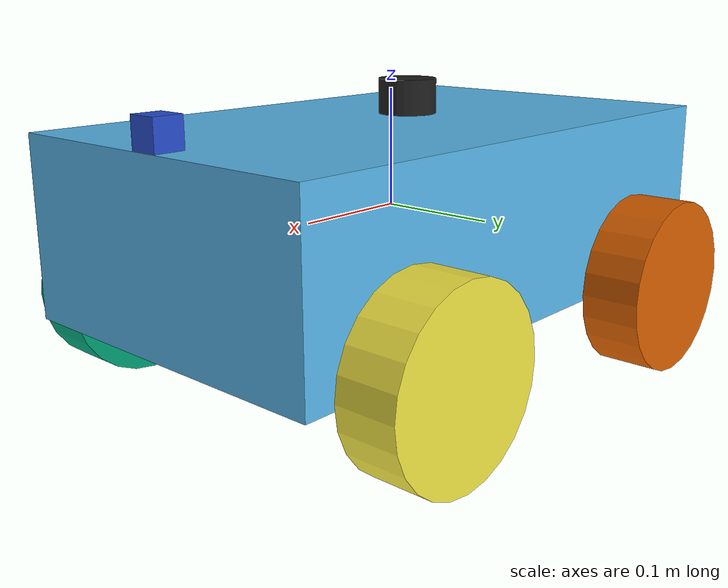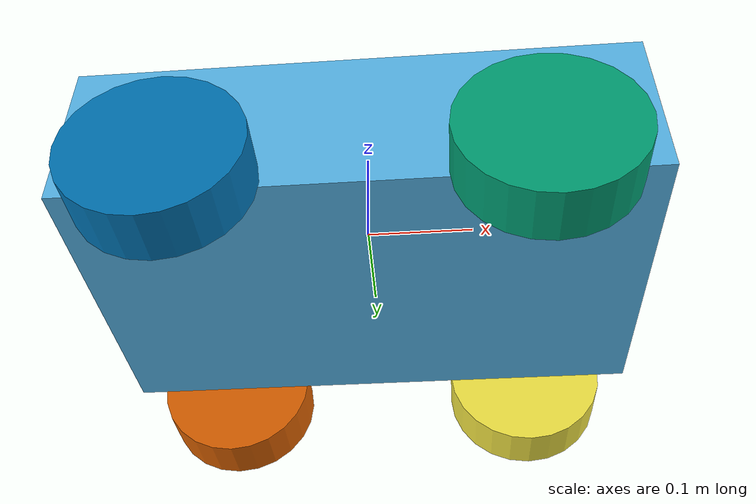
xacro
<?xml version="1.0"?>

<robot name="differential_drive_robot" xmlns:xacro="http://www.ros.org/wiki/xacro">

<!-- Body dimensions -->
<xacro:property name="body_link_x_dim" value="0.5"/>
<xacro:property name="body_link_y_dim" value="0.3"/>
<xacro:property name="body_link_z_dim" value="0.15"/>

<!-- Wheel dimensions -->
<xacro:property name="wheel_link_radius" value="0.075"/>
<xacro:property name="wheel_link_length" value="0.05"/>
<xacro:property name="wheel_link_z_location" value="-0.1"/>

<!-- Material density -->
<xacro:property name="body_density" value="2710.0"/>
<xacro:property name="wheel_density" value="2710.0"/>

<!-- Pi constant -->
<xacro:property name="pi_const" value="3.1415926"/>

<!-- Robot body and wheel mass -->
<xacro:property name="body_mass"
value="${body_density*body_link_x_dim*body_link_y_dim*body_link_z_dim}"/>

<xacro:property name="wheel_mass"
value="${wheel_density*pi_const*wheel_link_radius*wheel_link_radius*wheel_link_length}"/>

<!-- Moments of inertia of the wheel -->
<xacro:property name="Iz_wheel" value="${0.5*wheel_mass*wheel_link_radius*wheel_link_radius}"/>
<xacro:property name="I_wheel" value="${(1.0/12.0)*wheel_mass*(3.0*wheel_link_radius*wheel_link_radius+wheel_link_length*wheel_link_length)}"/>

<!-- This macro defines the complete inertial section of the wheel -->
<!-- It is used later in the code -->
<xacro:macro name="inertia_wheel">
    <inertial>
        <origin rpy="0 0 0" xyz="0 0 0"/>
        <mass value="${wheel_mass}"/>
        <inertia ixx="${I_wheel}" ixy="0.0" ixz="0.0" iyy="${I_wheel}" iyz="0" izz="${Iz_wheel}"/>
    </inertial>
</xacro:macro>

<!-- Over here we include the file that defines extra Gazebo options and motion control driver -->
<xacro:include filename="$(find four_wheel_bot)/urdf/gazebo_controller.xacro"/>

<!-- FROM HERE WE DEFINE LINKS, JOINTS -->

<!-- We need to have this dummy link otherwise Gazebo will complain -->
<link name="dummy">
</link>
<joint name="dummy_joint" type="fixed">
    <parent link="dummy"/>
    <child link="body_link"/>
</joint>

<!-- START: Body link of the robot -->

<link name="body_link">
    <visual>
        <geometry>
            <box size="${body_link_x_dim} ${body_link_y_dim} ${body_link_z_dim}"/>
        </geometry>
        <origin rpy="0 0 0" xyz="0 0 0"/>
    </visual>

    <collision>
        <geometry>
            <box size="${body_link_x_dim} ${body_link_y_dim} ${body_link_z_dim}"/>
        </geometry>
        <origin rpy="0 0 0" xyz="0 0 0"/>
    </collision>

    <inertial>
        <origin rpy="0 0 0" xyz="0 0 0"/>
        <mass value="${body_mass}"/>
        <inertia
        ixx="${(1/12)*body_mass*(body_link_y_dim*body_link_y_dim+body_link_z_dim*body_link_z_dim)}"
        ixy="0" ixz="0" iyy="${(1/12)*body_mass*(body_link_x_dim*body_link_x_dim+body_link_z_dim*body_link_z_dim)}"
        iyz="0"
        izz="${(1/12)*body_mass*(body_link_y_dim*body_link_y_dim+body_link_x_dim*body_link_x_dim)}"/>
    </inertial>
</link>

<!-- END: Body link of the robot -->

<!-- START: Back right wheel of the robot and the joint -->
<joint name="wheel1_joint" type="continuous">
    <parent link="body_link"/>
    <child link="wheel1_link"/>
    <origin xyz="0.15 -0.175 -0.07" rpy="0 0 0"/>
    <axis xyz="0 1 0"/>
    <limit effort="1000" velocity="1000"/>
    <dynamics damping="1.0" friction="1.0"/>
</joint>

<link name="wheel1_link">
    <visual>
        <origin rpy="1.570795 0 0" xyz="0 0 0"/>
        <geometry>
            <cylinder length="${wheel_link_length}" radius="${wheel_link_radius}"/>
        </geometry>
    </visual>

    <collision>
        <origin rpy="1.570795 0 0" xyz="0 0 0"/>
        <geometry>
            <cylinder length="${wheel_link_length}" radius="${wheel_link_radius}"/>
        </geometry>
    </collision>

    <xacro:inertia_wheel />
</link>

<!-- END: Back right wheel of the robot and the joint -->

<!-- START: Back left wheel of the robot and the joint -->
<joint name="wheel2_joint" type="continuous">
    <parent link="body_link"/>
    <child link="wheel2_link"/>
    <origin xyz="0.15 0.175 -0.07" rpy="0 0 0"/>
    <axis xyz="0 1 0"/>
    <limit effort="1000" velocity="1000"/>
    <dynamics damping="1.0" friction="1.0"/>
</joint>

<link name="wheel2_link">
    <visual>
        <origin rpy="1.570795 0 0" xyz="0 0 0"/>
        <geometry>
            <cylinder length="${wheel_link_length}" radius="${wheel_link_radius}"/>
        </geometry>
    </visual>

    <collision>
        <origin rpy="1.570795 0 0" xyz="0 0 0"/>
        <geometry>
            <cylinder length="${wheel_link_length}" radius="${wheel_link_radius}"/>
        </geometry>
    </collision>

    <xacro:inertia_wheel />
</link>

<!-- END: Back left wheel of the robot and the joint -->

<!-- START: Front right wheel of the robot and the joint -->
<joint name="wheel3_joint" type="continuous">
    <parent link="body_link"/>
    <child link="wheel3_link"/>
    <origin xyz="-0.15 -0.175 -0.07" rpy="0 0 0"/>
    <axis xyz="0 1 0"/>
    <limit effort="1000" velocity="1000"/>
    <dynamics damping="1.0" friction="1.0"/>
</joint>

<link name="wheel3_link">
    <visual>
        <origin rpy="1.570795 0 0" xyz="0 0 0"/>
        <geometry>
            <cylinder length="${wheel_link_length}" radius="${wheel_link_radius}"/>
        </geometry>
    </visual>

    <collision>
        <origin rpy="1.570795 0 0" xyz="0 0 0"/>
        <geometry>
            <cylinder length="${wheel_link_length}" radius="${wheel_link_radius}"/>
        </geometry>
    </collision>

    <xacro:inertia_wheel />
</link>

<!-- END: Front right wheel of the robot and the joint -->

<!-- START: Front left wheel of the robot and the joint -->

<joint name="wheel4_joint" type="continuous">
    <parent link="body_link"/>
    <child link="wheel4_link"/>
    <origin xyz="-0.15 0.175 -0.07" rpy="0 0 0"/>
    <axis xyz="0 1 0"/>
    <limit effort="1000" velocity="1000"/>
    <dynamics damping="1.0" friction="1.0"/>
</joint>

<link name="wheel4_link">
    <visual>
        <origin rpy="1.570795 0 0" xyz="0 0 0"/>
        <geometry>
            <cylinder length="${wheel_link_length}" radius="${wheel_link_radius}"/>
        </geometry>
    </visual>

    <collision>
        <origin rpy="1.570795 0 0" xyz="0 0 0"/>
        <geometry>
            <cylinder length="${wheel_link_length}" radius="${wheel_link_radius}"/>
        </geometry>
    </collision>

    <xacro:inertia_wheel />
</link>

<!-- END: Front left wheel of the robot and the joint -->

<!-- START: Sensors -->

<!-- Camera sensor link and joint -->
<link name="camera_link">
    <visual>
        <origin rpy="0 0 0" xyz="0 0 0"/>
        <geometry>
            <box size="0.025 0.025 0.025"/>
        </geometry>
        <material name="Gazebo/Blue"/>
    </visual>
    <collision>
        <origin rpy="0 0 0" xyz="0 0 0"/>
        <geometry>
            <box size="0.05 0.05 0.05"/>
        </geometry>
    </collision>
    <inertial>
        <origin rpy="0 0 0" xyz="0 0 0"/>
        <mass value="0.1"/>
        <inertia ixx="1e-5" ixy="0" ixz="0" iyy="1e-5" iyz="0" izz="1e-5"/>
    </inertial>
</link>

<joint name="camera_joint" type="fixed">
    <parent link="body_link"/>
    <child link="camera_link"/>
    <origin xyz="0.238 0 0.088" rpy="0 0 0"/>
</joint>

<!-- Optical frame for camera (REP-103 compliant) -->
<joint name="camera_optical_joint" type="fixed">
    <parent link="camera_link"/>
    <child link="camera_link_optical"/>
    <origin xyz="0 0 0" rpy="${-pi/2} 0 ${-pi/2}"/>

</joint>

<link name="camera_link_optical"></link>

<!-- Lidar sensor link and joint -->
<link name="lidar_link">
    <visual>
        <origin rpy="0 0 0" xyz="-0.023 0 0.032"/>
        <geometry>
            <cylinder length="0.03" radius="0.025"/>
        </geometry>
    </visual>
    <collision>
        <origin rpy="0 0 0" xyz="0.3 0 0.25"/>
        <geometry>
            <cylinder length="0.06" radius="0.05"/>
        </geometry>
    </collision>
    <inertial>
        <origin rpy="0 0 0" xyz="0 0 0"/>
        <mass value="0.1"/>
        <inertia ixx="1e-5" ixy="0" ixz="0" iyy="1e-5" iyz="0" izz="1e-5"/>
    </inertial>
</link>

<joint name="lidar_joint" type="fixed">
    <parent link="body_link"/>
    <child link="lidar_link"/>
    <origin xyz="0.0 0 0.06" rpy="0 0 0.088"/>
</joint>

<!-- Provide a REP-105 style alias frame expected by some tools -->
<link name="laser_frame"/>
<joint name="laser_frame_joint" type="fixed">
    <parent link="lidar_link"/>
    <child link="laser_frame"/>
    <origin xyz="0 0 0" rpy="0 0 0"/>

</joint>

<!-- Gazebo plugins for sensors -->
<gazebo reference="camera_link">
    <material>Gazebo/Black</material>
    <sensor name="camera" type="camera">
        <pose> 0 0 0 0 0 0 </pose>
        <visualize>true</visualize>
        <update_rate>10</update_rate>
        <camera>
            <horizontal_fov>1.089</horizontal_fov>
            <image>
                <format>R8G8B8</format>
                <width>640</width>
                <height>480</height>
            </image>
            <clip>
                <near>0.05</near>
                <far>8.0</far>
            </clip>
        </camera>
        <plugin name="camera_controller" filename="libgazebo_ros_camera.so">
            <frame_name>camera_link_optical</frame_name>
        </plugin>
    </sensor>
</gazebo>

<gazebo reference="lidar_link">
    <material>Gazebo/Black</material>
    <sensor name="laser" type="ray">
        <pose> 0.06 0 0 0 0 0 </pose>
        <always_on>true</always_on>
        <visualize>false</visualize>
        <update_rate>10</update_rate>
        <ray>
            <scan>
                <horizontal>
                    <samples>360</samples>
                    <min_angle>-3.14</min_angle>
                    <max_angle>3.14</max_angle>
                </horizontal>
            </scan>
            <range>
                <min>0.3</min>
                <max>12.0</max>
            </range>
        </ray>
        <plugin name="laser_controller" filename="libgazebo_ros_ray_sensor.so">
            <ros>
                <argument>~/out:=scan</argument>
            </ros>
            <output_type>sensor_msgs/LaserScan</output_type>
            <frame_name>laser_frame</frame_name>
        </plugin>
    </sensor>
</gazebo>

<!-- END: Sensors -->

</robot>
